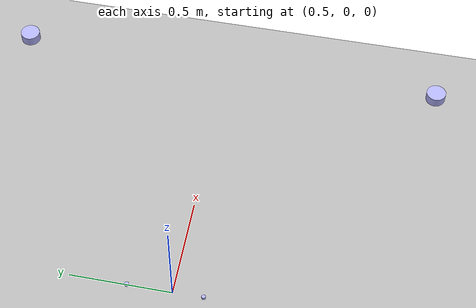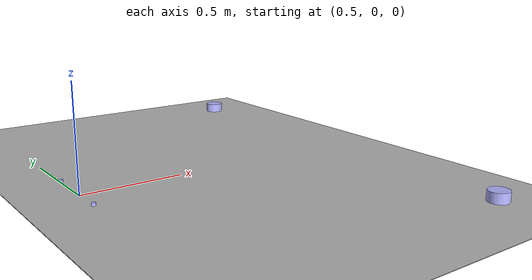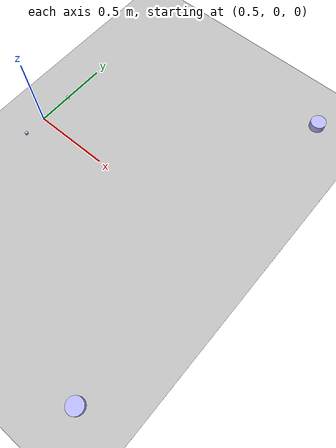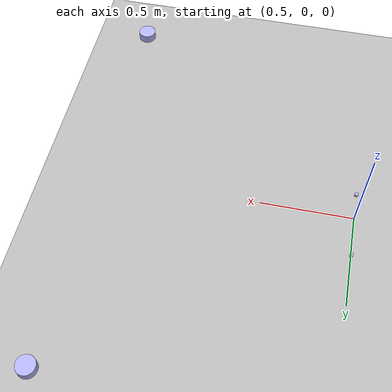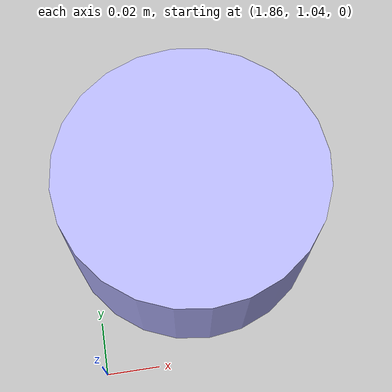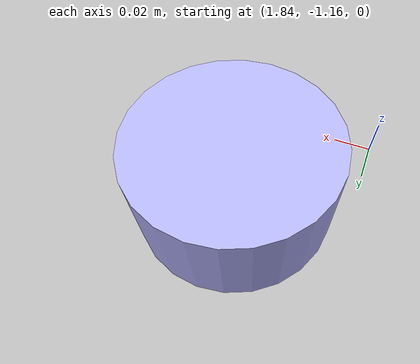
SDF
<sdf version="1.7">
 <world name="default">
  <light name="sun" type="directional">
   <pose>0 0 10 0 -0 0</pose>
   <diffuse>0.8 0.8 0.8 1</diffuse>
   <specular>0.2 0.2 0.2 1</specular>
   <attenuation>
    <range>1000</range>
    <constant>0.9</constant>
    <linear>0.01</linear>
    <quadratic>0.001</quadratic>
   </attenuation>
   <direction>-0.5 0.1 -0.9</direction>
   <spot><inner_angle>0</inner_angle><outer_angle>0</outer_angle><falloff>0</falloff></spot>
  </light>
  <model name="ground_plane">
   <static>1</static>
   <link name="link">
    <collision name="collision">
     <geometry><plane><normal>0 0 1</normal><size>100 100</size></plane></geometry>
     <surface><friction><ode><mu>100</mu><mu2>50</mu2></ode></friction></surface>
    </collision>
    <visual name="visual">
     <cast_shadows>0</cast_shadows>
     <geometry><plane><normal>0 0 1</normal><size>100 100</size></plane></geometry>
     <material>
      <script><uri>file://media/materials/scripts/gazebo.material</uri><name>Gazebo/Grey</name></script>
     </material>
    </visual>
   </link>
  </model>
  <gravity>0 0 -9.8</gravity>
  <magnetic_field>6e-06 2.3e-05 -4.2e-05</magnetic_field>
  <atmosphere type="adiabatic"/>
  <physics type="ode">
   <max_step_size>0.001</max_step_size>
   <real_time_factor>1</real_time_factor>
   <real_time_update_rate>1000</real_time_update_rate>
  </physics>
  <scene><ambient>0.4 0.4 0.4 1</ambient><background>0.7 0.7 0.7 1</background><shadows>1</shadows></scene>
  <spherical_coordinates>
   <surface_model>EARTH_WGS84</surface_model>
   <latitude_deg>0</latitude_deg>
   <longitude_deg>0</longitude_deg>
   <elevation>0</elevation>
   <heading_deg>0</heading_deg>
  </spherical_coordinates>
  <model name="sb_map">
   <pose>6.315 -0.31 0 0 -0 0</pose>
   <link name="link">
    <visual name="visual">
     <geometry><box><size>12.63 6.62 0.001</size></box></geometry>
     <material><script><uri>model://sb_map/materials/sb_map.material</uri><name>sb_map</name></script></material>
    </visual>
   </link>
   <static>1</static>
  </model>
  <model name="pole_1">
   <static>1</static>
   <link name="link_2">
    <pose>0.5 -0.15 0 0 -0 0</pose>
    <inertial>
     <mass>1</mass>
     <inertia><ixx>0.145833</ixx><ixy>0</ixy><ixz>0</ixz><iyy>0.145833</iyy><iyz>0</iyz><izz>0.125</izz></inertia>
    </inertial>
    <visual name="visual">
     <geometry><cylinder><radius>0.01</radius><length>0.03</length></cylinder></geometry>
     <material>
      <lighting>1</lighting>
      <script><uri>file://media/materials/scripts/gazebo.material</uri><name>Gazebo/Grey</name></script>
      <ambient>0 1 1 1</ambient>
      <diffuse>0.7 0.7 1 1</diffuse>
      <specular>0.01 0.01 1 1</specular>
      <emissive>0 0 0 1</emissive>
      <shader type="vertex"><normal_map>__default__</normal_map></shader>
     </material>
     <cast_shadows>0</cast_shadows>
    </visual>
   </link>
   <pose>0 0 0 0 0 -0.000841</pose>
  </model>
  <model name="pole_2">
   <static>1</static>
   <link name="link_3">
    <pose>0.5 0.22 0 0 -0 0</pose>
    <inertial>
     <mass>1</mass>
     <inertia><ixx>0.145833</ixx><ixy>0</ixy><ixz>0</ixz><iyy>0.145833</iyy><iyz>0</iyz><izz>0.125</izz></inertia>
    </inertial>
    <visual name="visual">
     <geometry><cylinder><radius>0.01</radius><length>0.03</length></cylinder></geometry>
     <material>
      <lighting>1</lighting>
      <script><uri>file://media/materials/scripts/gazebo.material</uri><name>Gazebo/Grey</name></script>
      <ambient>0 1 1 1</ambient>
      <diffuse>0.7 0.7 1 1</diffuse>
      <specular>0.01 0.01 1 1</specular>
      <emissive>0 0 0 1</emissive>
      <shader type="vertex"><normal_map>__default__</normal_map></shader>
     </material>
     <cast_shadows>0</cast_shadows>
    </visual>
   </link>
   <pose>0 0 0 0 0 -0.000841</pose>
  </model>
  <model name="pole_3">
   <static>1</static>
   <link name="link_4">
    <pose>1.9 1.1 0 0 -0 0</pose>
    <inertial>
     <mass>1</mass>
     <inertia><ixx>0.145833</ixx><ixy>0</ixy><ixz>0</ixz><iyy>0.145833</iyy><iyz>0</iyz><izz>0.125</izz></inertia>
    </inertial>
    <visual name="visual">
     <geometry><cylinder><radius>0.05</radius><length>0.1</length></cylinder></geometry>
     <material>
      <lighting>1</lighting>
      <script><uri>file://media/materials/scripts/gazebo.material</uri><name>Gazebo/Grey</name></script>
      <ambient>0 1 1 1</ambient>
      <diffuse>0.7 0.7 1 1</diffuse>
      <specular>0.01 0.01 1 1</specular>
      <emissive>0 0 0 1</emissive>
      <shader type="vertex"><normal_map>__default__</normal_map></shader>
     </material>
     <cast_shadows>0</cast_shadows>
    </visual>
   </link>
   <pose>0 0 0 0 0 -0.000841</pose>
  </model>
  <model name="pole_4">
   <static>1</static>
   <link name="link_5">
    <pose>1.9 -1.1 0 0 -0 0</pose>
    <inertial>
     <mass>1</mass>
     <inertia><ixx>0.145833</ixx><ixy>0</ixy><ixz>0</ixz><iyy>0.145833</iyy><iyz>0</iyz><izz>0.125</izz></inertia>
    </inertial>
    <visual name="visual">
     <geometry><cylinder><radius>0.05</radius><length>0.1</length></cylinder></geometry>
     <material>
      <lighting>1</lighting>
      <script><uri>file://media/materials/scripts/gazebo.material</uri><name>Gazebo/Grey</name></script>
      <ambient>0 1 1 1</ambient>
      <diffuse>0.7 0.7 1 1</diffuse>
      <specular>0.01 0.01 1 1</specular>
      <emissive>0 0 0 1</emissive>
      <shader type="vertex"><normal_map>__default__</normal_map></shader>
     </material>
     <cast_shadows>0</cast_shadows>
    </visual>
   </link>
   <pose>0 0 0 0 0 -0.000841</pose>
  </model>
 </world>
</sdf>
